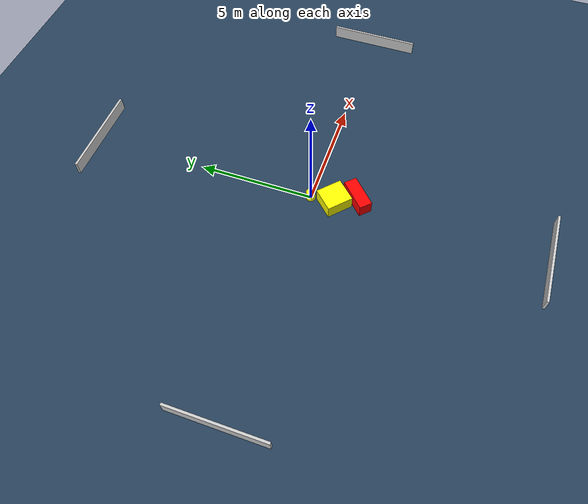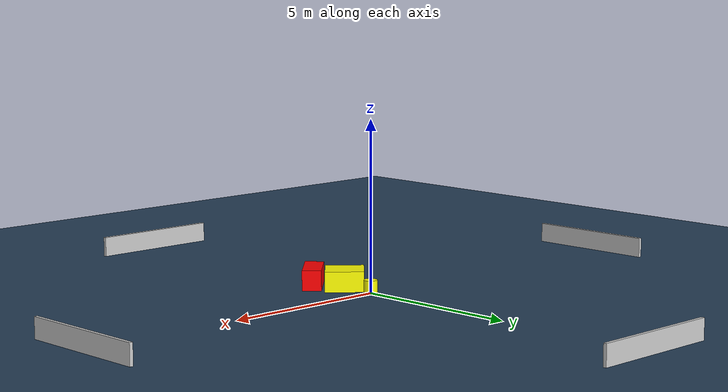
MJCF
<?xml version="1.0" ?>
<mujoco model="generated_environment">
  <option timestep="0.01" integrator="RK4" cone="elliptic"/>
  <default>
    <geom density="1"/>
  </default>
  <asset>
    <texture builtin="gradient" height="3072" name="skybox" rgb1="0.3 0.5 0.7" rgb2="0 0 0" type="skybox" width="512"/>
    <texture builtin="checker" height="300" name="groundplane" rgb1="0.2 0.3 0.4" rgb2="0.1 0.2 0.3" type="2d" width="300"/>
    <material name="groundplane" reflectance="0.2" texrepeat="5 5" texture="groundplane"/>
  </asset>
  <worldbody>
    <light dir="0 0 -1" directional="true" pos="0 0 1.5"/>
    <geom condim="3" friction="0.5 0.005 0.001" material="groundplane" name="floor" pos="0 0 0" size="0 0 0.05" type="plane"/>
    <body name="walls">
      <geom name="wall_1" condim="4" pos="-10.0 0.0 0.3" rgba="0.800000011920929 0.800000011920929 0.800000011920929 1.0" size="0.05 2.0 0.3" type="box"/>
      <geom name="wall_2" condim="4" pos="10.0 0.0 0.3" rgba="0.800000011920929 0.800000011920929 0.800000011920929 1.0" size="0.05 2.0 0.3" type="box"/>
      <geom name="wall_3" condim="4" pos="0.0 -10.0 0.3" rgba="0.800000011920929 0.800000011920929 0.800000011920929 1.0" size="2.0 0.05 0.3" type="box"/>
      <geom name="wall_4" condim="4" pos="0.0 10.0 0.3" rgba="0.800000011920929 0.800000011920929 0.800000011920929 1.0" size="2.0 0.05 0.3" type="box"/>
    </body>
    <body name="robot">
      <joint name="joint_x" type="slide" pos="0 0 0" axis="1 0 0"/>
      <joint name="joint_y" type="slide" pos="0 0 0" axis="0 1 0"/>
      <geom name="robot" type="cylinder" pos="0.0 0.0 0.2" size="0.2 0.2 0.0" mass="5.0" friction="1.0 0.005 0.0001" condim="4" rgba="1.0 1.0 0.0 1.0"/>
    </body>
    <body name="obstacle_1_movable">
      <geom name="obstacle_1_movable" condim="4" pos="0.06732323293071825 -1.0117037918340688 0.3" euler="0 0 226.34363189522062" friction="0.0 0.005 0.001" rgba="1.0 1.0 0.0 1.0" size="0.5205124728245738 0.5654923973155734 0.3" type="box" mass="0.1"/>
      <joint type="free"/>
    </body>
    <body name="obstacle_2_static">
      <geom name="obstacle_2_static" condim="4" pos="0.47219312749747283 -1.9137037281028282 0.3" euler="0 0 43.80124416305031" friction="0.0 0.005 0.001" rgba="1.0 0.0 0.0 1.0" size="0.7097534575653044 0.2804137617608784 0.3" type="box"/>
    </body>
  </worldbody>
  <actuator>
    <motor name="actuator_x" joint="joint_x" gear="1" ctrlrange="-1 1"/>
    <motor name="actuator_y" joint="joint_y" gear="1" ctrlrange="-1 1"/>
  </actuator>
</mujoco>
